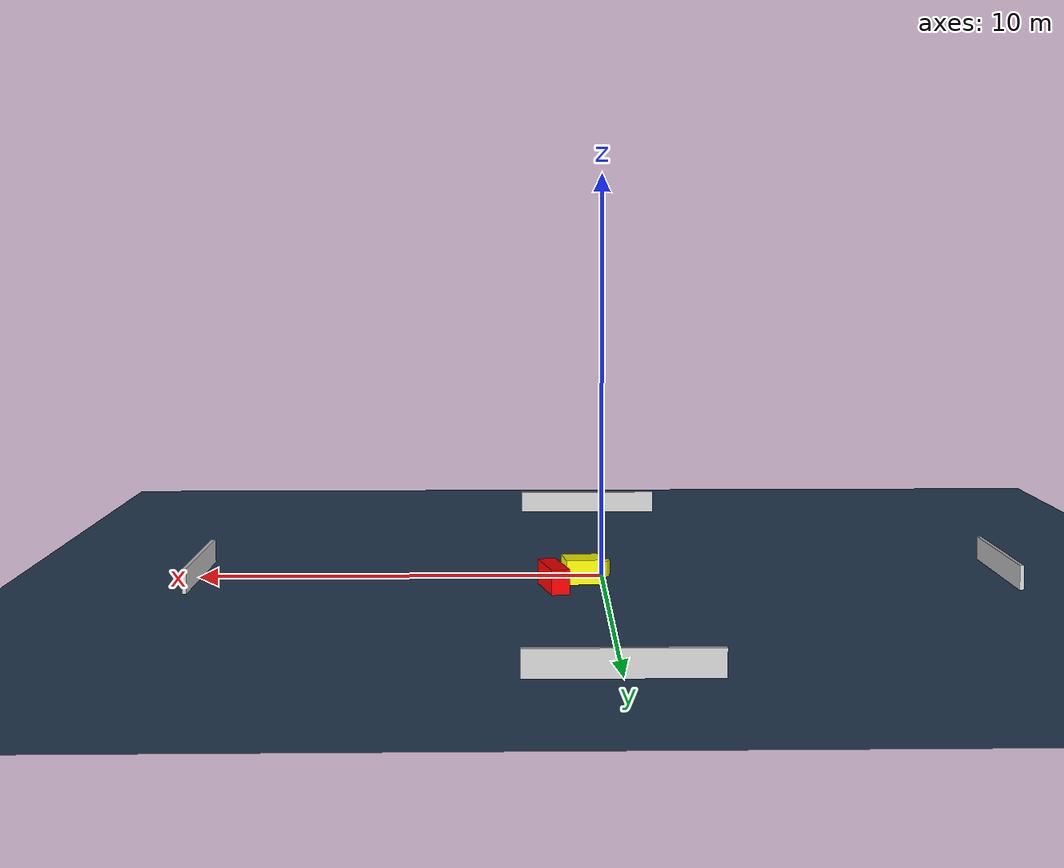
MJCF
<?xml version="1.0" ?>
<mujoco model="generated_environment">
  <option timestep="0.01" integrator="RK4" cone="elliptic"/>
  <default>
    <geom density="1"/>
  </default>
  <asset>
    <texture builtin="gradient" height="3072" name="skybox" rgb1="0.3 0.5 0.7" rgb2="0 0 0" type="skybox" width="512"/>
    <texture builtin="checker" height="300" name="groundplane" rgb1="0.2 0.3 0.4" rgb2="0.1 0.2 0.3" type="2d" width="300"/>
    <material name="groundplane" reflectance="0.2" texrepeat="5 5" texture="groundplane"/>
  </asset>
  <worldbody>
    <light dir="0 0 -1" directional="true" pos="0 0 1.5"/>
    <geom condim="3" friction="0.5 0.005 0.001" material="groundplane" name="floor" pos="0 0 0" size="0 0 0.05" type="plane"/>
    <body name="walls">
      <geom name="wall_1" condim="4" pos="-10.0 0.0 0.3" rgba="0.800000011920929 0.800000011920929 0.800000011920929 1.0" size="0.05 2.0 0.3" type="box"/>
      <geom name="wall_2" condim="4" pos="10.0 0.0 0.3" rgba="0.800000011920929 0.800000011920929 0.800000011920929 1.0" size="0.05 2.0 0.3" type="box"/>
      <geom name="wall_3" condim="4" pos="0.0 -10.0 0.3" rgba="0.800000011920929 0.800000011920929 0.800000011920929 1.0" size="2.0 0.05 0.3" type="box"/>
      <geom name="wall_4" condim="4" pos="0.0 10.0 0.3" rgba="0.800000011920929 0.800000011920929 0.800000011920929 1.0" size="2.0 0.05 0.3" type="box"/>
    </body>
    <body name="robot">
      <joint name="joint_x" type="slide" pos="0 0 0" axis="1 0 0"/>
      <joint name="joint_y" type="slide" pos="0 0 0" axis="0 1 0"/>
      <geom name="robot" type="cylinder" pos="0.0 0.0 0.2" size="0.2 0.2 0.0" mass="5.0" friction="1.0 0.005 0.0001" condim="4" rgba="1.0 1.0 0.0 1.0"/>
    </body>
    <body name="obstacle_1_movable">
      <geom name="obstacle_1_movable" condim="4" pos="0.5164392681818559 0.6920289979628017 0.3" euler="0 0 7.002842649453522" friction="0.0 0.005 0.001" rgba="1.0 1.0 0.0 1.0" size="0.4462398151410481 0.4231855212430418 0.3" type="box" mass="0.1"/>
      <joint type="free"/>
    </body>
    <body name="obstacle_2_static">
      <geom name="obstacle_2_static" condim="4" pos="1.22689190003108 1.5672581988900234 0.3" euler="0 0 282.1929123593252" friction="0.0 0.005 0.001" rgba="1.0 0.0 0.0 1.0" size="0.754084198422287 0.22144940228919094 0.3" type="box"/>
    </body>
  </worldbody>
  <actuator>
    <motor name="actuator_x" joint="joint_x" gear="1" ctrlrange="-1 1"/>
    <motor name="actuator_y" joint="joint_y" gear="1" ctrlrange="-1 1"/>
  </actuator>
</mujoco>
